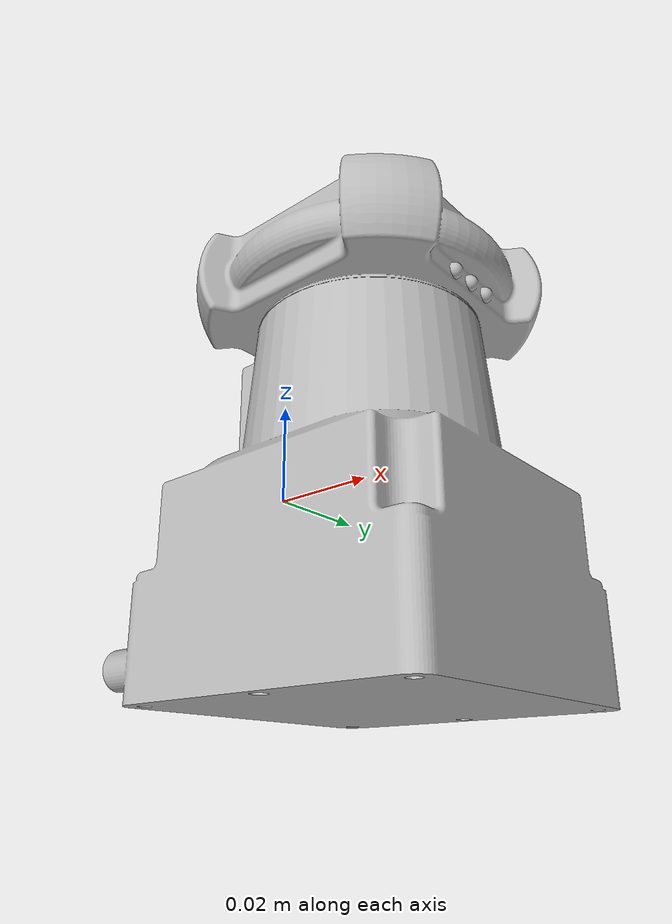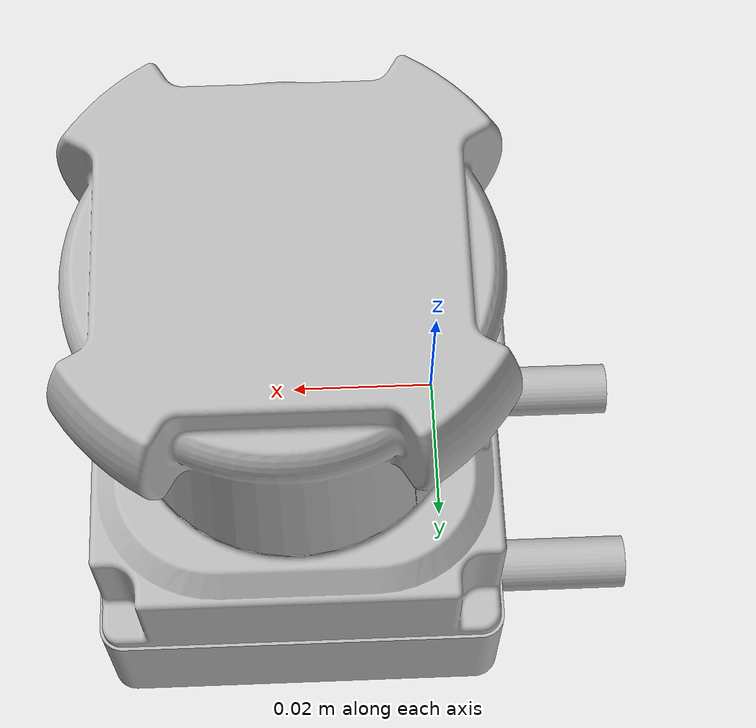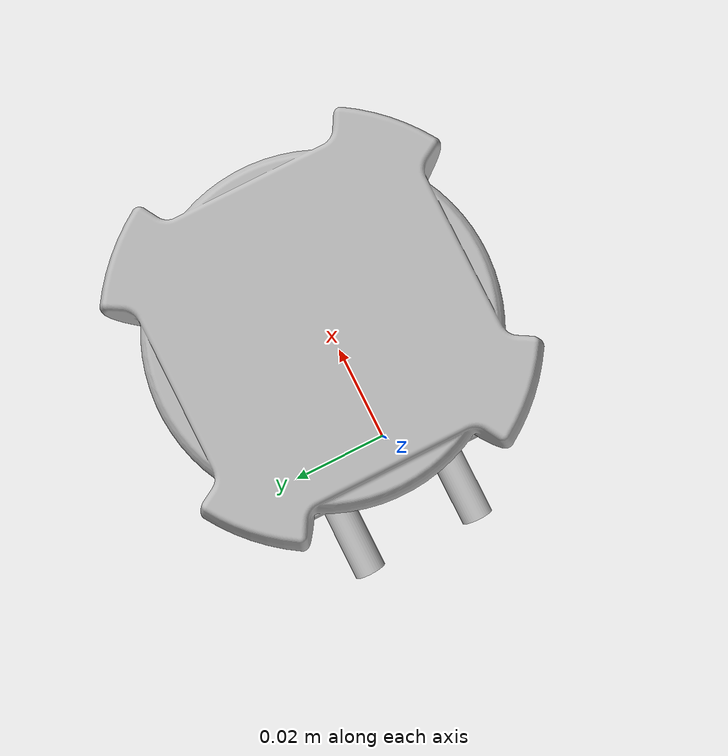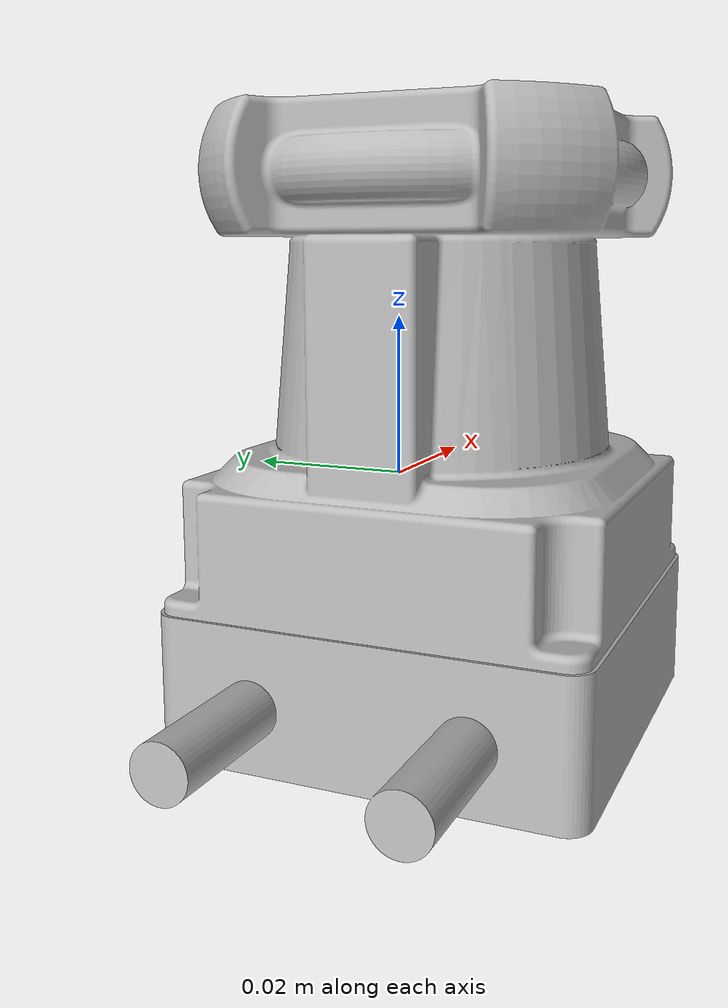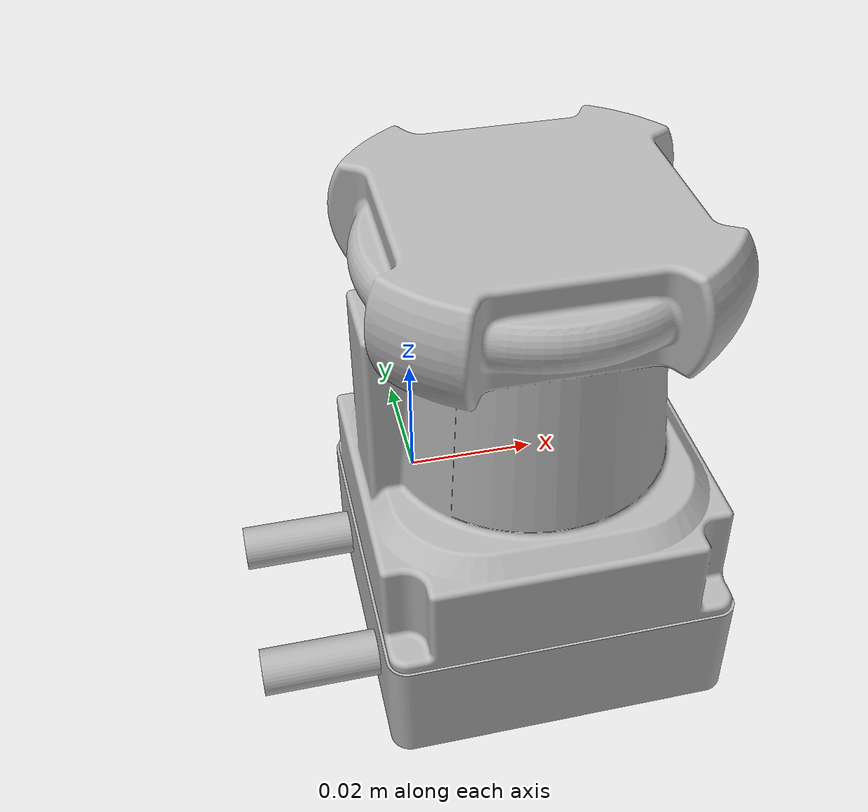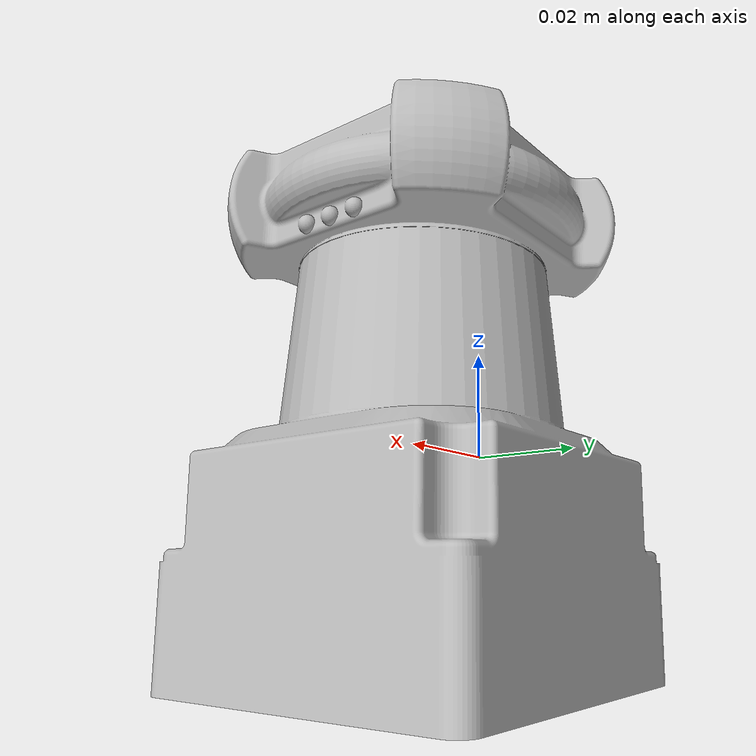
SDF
<?xml version="1.0" ?>
<sdf version="1.0">
  <model name="hokuyo_horizontal">
    <pose>0 0 0 0 0 0</pose>
    <link name="hukuyo_horizontal">
      <inertial>
        <mass>0.1</mass>
      </inertial>
      <visual name="visual">
        <geometry>
          <mesh>
            <uri>model://hokuyo_horizontal/meshes/hokuyo_horizontal.dae</uri>
	    <scale>0.001 0.001 0.001</scale>
          </mesh>
        </geometry>
	<!-- Need to change pose due to difference in axis with new LX30 Lidar-->
	<!-- Do not want to change who model pose because the scans will be messed up-->
	<pose>-0.03 0.032 -0.04 1.570796 0 0</pose>
      </visual>
      <collision name="collision-base">
        <pose>0 0 -0.0145 0 0 0</pose>
        <geometry>
          <box>
            <size>0.05 0.05 0.041</size>
          </box>
        </geometry>
      </collision>
      <collision name="collision-top">
        <pose>0 0 0.0205 0 0 0</pose>
        <geometry>
          <cylinder>
            <radius>0.021</radius>
            <length>0.029</length>
          </cylinder>
        </geometry>
      </collision>
      <sensor name="laser" type="ray">
        <pose>0.01 0 0.0175 0 -0 0</pose>
        <ray>
          <scan>
            <horizontal>
              <samples>50</samples>
              <resolution>1</resolution>
              <min_angle>-2.26889</min_angle>
              <max_angle>2.268899</max_angle>
            </horizontal>
          </scan>
          <range>
            <min>0.08</min>
            <max>10</max>
            <resolution>0.01</resolution>
          </range>
        </ray>
        <plugin name="laser" filename="libRayPlugin.so" />
        <always_on>1</always_on>
        <update_rate>30</update_rate>
        <visualize>false</visualize>
      </sensor>
    </link>
  </model>
</sdf>
